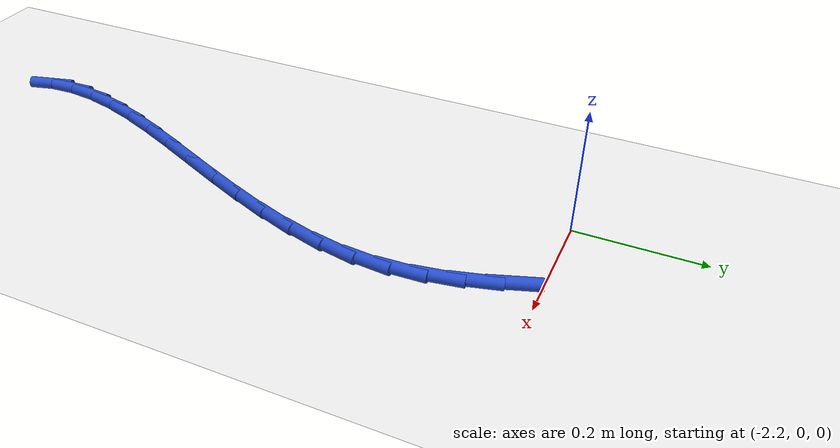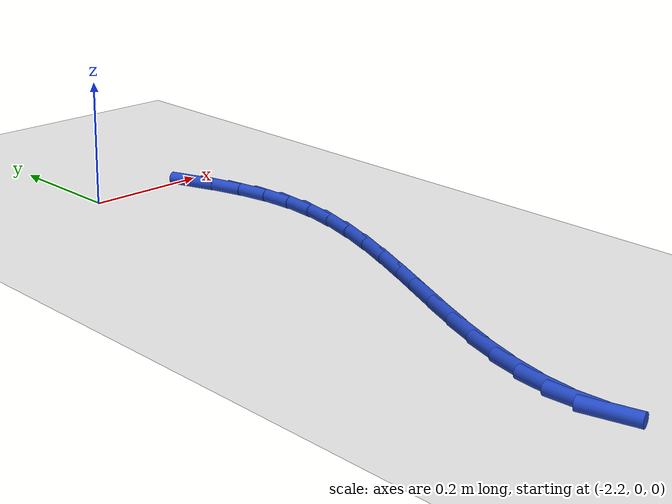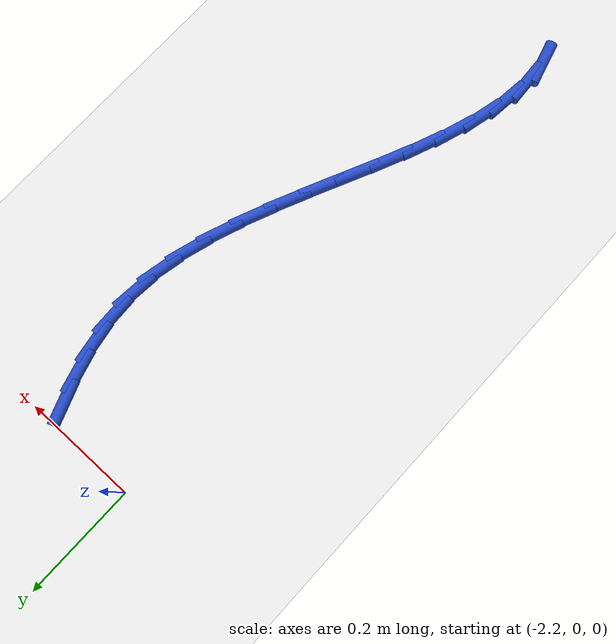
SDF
<sdf version="1.6">
 <world name="default">
  <model name="ground_plane">
   <static>1</static>
   <link name="link">
    <collision name="collision">
     <geometry><plane><normal>0 0 1</normal><size>100 100</size></plane></geometry>
     <surface><friction><ode><mu>100</mu><mu2>50</mu2></ode></friction></surface>
    </collision>
    <visual name="visual">
     <cast_shadows>0</cast_shadows>
     <geometry><plane><normal>0 0 1</normal><size>100 100</size></plane></geometry>
     <material>
      <script><uri>file://media/materials/scripts/gazebo.material</uri><name>Gazebo/WhiteGlow</name></script>
     </material>
    </visual>
   </link>
  </model>
  <model name="line">
   <link name="link_76">
    <pose>-2.031773640252935 -0.03587168650699777 0.01 0 1.57 -1.2196988792442198</pose>
    <collision name="collision">
     <geometry><cylinder><radius>0.01</radius><length>0.08</length></cylinder></geometry>
    </collision>
    <visual name="visual">
     <material>
      <script><name>Gazebo/Blue</name><uri>file://media/materials/scripts/gazebo.material</uri></script>
     </material>
     <geometry><cylinder><radius>0.01</radius><length>0.08</length></cylinder></geometry>
    </visual>
   </link>
   <link name="link_77">
    <pose>-2.0134906540737303 -0.08578801277975956 0.01 0 1.57 -1.301936873335858</pose>
    <collision name="collision">
     <geometry><cylinder><radius>0.01</radius><length>0.08</length></cylinder></geometry>
    </collision>
    <visual name="visual">
     <material>
      <script><name>Gazebo/Blue</name><uri>file://media/materials/scripts/gazebo.material</uri></script>
     </material>
     <geometry><cylinder><radius>0.01</radius><length>0.08</length></cylinder></geometry>
    </visual>
   </link>
   <link name="link_78">
    <pose>-1.9996487278731592 -0.1360253562721678 0.01 0 1.57 -1.4062714458879864</pose>
    <collision name="collision">
     <geometry><cylinder><radius>0.01</radius><length>0.08</length></cylinder></geometry>
    </collision>
    <visual name="visual">
     <material>
      <script><name>Gazebo/Blue</name><uri>file://media/materials/scripts/gazebo.material</uri></script>
     </material>
     <geometry><cylinder><radius>0.01</radius><length>0.08</length></cylinder></geometry>
    </visual>
   </link>
   <link name="link_79">
    <pose>-1.9911879266701011 -0.1869861764240299 0.01 0 1.57 -1.5297415730393862</pose>
    <collision name="collision">
     <geometry><cylinder><radius>0.01</radius><length>0.08</length></cylinder></geometry>
    </collision>
    <visual name="visual">
     <material>
      <script><name>Gazebo/Blue</name><uri>file://media/materials/scripts/gazebo.material</uri></script>
     </material>
     <geometry><cylinder><radius>0.01</radius><length>0.08</length></cylinder></geometry>
    </visual>
   </link>
   <link name="link_80">
    <pose>-1.9890483154834369 -0.23907293267515 0.01 0 1.57 1.478895554950037</pose>
    <collision name="collision">
     <geometry><cylinder><radius>0.01</radius><length>0.08</length></cylinder></geometry>
    </collision>
    <visual name="visual">
     <material>
      <script><name>Gazebo/Blue</name><uri>file://media/materials/scripts/gazebo.material</uri></script>
     </material>
     <geometry><cylinder><radius>0.01</radius><length>0.08</length></cylinder></geometry>
    </visual>
   </link>
   <link name="link_81">
    <pose>-1.9939834837968728 -0.2926227195791477 0.01 0 1.57 1.3656000970689612</pose>
    <collision name="collision">
     <geometry><cylinder><radius>0.01</radius><length>0.08</length></cylinder></geometry>
    </collision>
    <visual name="visual">
     <material>
      <script><name>Gazebo/Blue</name><uri>file://media/materials/scripts/gazebo.material</uri></script>
     </material>
     <geometry><cylinder><radius>0.01</radius><length>0.08</length></cylinder></geometry>
    </visual>
   </link>
   <link name="link_82">
    <pose>-2.005405332771232 -0.3475023324386206 0.01 0 1.57 1.2797999846254213</pose>
    <collision name="collision">
     <geometry><cylinder><radius>0.01</radius><length>0.08</length></cylinder></geometry>
    </collision>
    <visual name="visual">
     <material>
      <script><name>Gazebo/Blue</name><uri>file://media/materials/scripts/gazebo.material</uri></script>
     </material>
     <geometry><cylinder><radius>0.01</radius><length>0.08</length></cylinder></geometry>
    </visual>
   </link>
   <link name="link_83">
    <pose>-2.0221383997064444 -0.40337267910888003 0.01 0 1.57 1.2171398493664698</pose>
    <collision name="collision">
     <geometry><cylinder><radius>0.01</radius><length>0.08</length></cylinder></geometry>
    </collision>
    <visual name="visual">
     <material>
      <script><name>Gazebo/Blue</name><uri>file://media/materials/scripts/gazebo.material</uri></script>
     </material>
     <geometry><cylinder><radius>0.01</radius><length>0.08</length></cylinder></geometry>
    </visual>
   </link>
   <link name="link_84">
    <pose>-2.043004738154764 -0.4598937968222703 0.01 0 1.57 1.173882690733066</pose>
    <collision name="collision">
     <geometry><cylinder><radius>0.01</radius><length>0.08</length></cylinder></geometry>
    </collision>
    <visual name="visual">
     <material>
      <script><name>Gazebo/Blue</name><uri>file://media/materials/scripts/gazebo.material</uri></script>
     </material>
     <geometry><cylinder><radius>0.01</radius><length>0.08</length></cylinder></geometry>
    </visual>
   </link>
   <link name="link_85">
    <pose>-2.066826401668445 -0.5167257228111323 0.01 0 1.57 1.1473892147832763</pose>
    <collision name="collision">
     <geometry><cylinder><radius>0.01</radius><length>0.08</length></cylinder></geometry>
    </collision>
    <visual name="visual">
     <material>
      <script><name>Gazebo/Blue</name><uri>file://media/materials/scripts/gazebo.material</uri></script>
     </material>
     <geometry><cylinder><radius>0.01</radius><length>0.08</length></cylinder></geometry>
    </visual>
   </link>
   <link name="link_86">
    <pose>-2.092425443799744 -0.5735284943078107 0.01 0 1.57 1.1361678795984493</pose>
    <collision name="collision">
     <geometry><cylinder><radius>0.01</radius><length>0.08</length></cylinder></geometry>
    </collision>
    <visual name="visual">
     <material>
      <script><name>Gazebo/Blue</name><uri>file://media/materials/scripts/gazebo.material</uri></script>
     </material>
     <geometry><cylinder><radius>0.01</radius><length>0.08</length></cylinder></geometry>
    </visual>
   </link>
   <link name="link_87">
    <pose>-2.118623918100914 -0.6299621485446472 0.01 0 1.57 1.139855248068263</pose>
    <collision name="collision">
     <geometry><cylinder><radius>0.01</radius><length>0.08</length></cylinder></geometry>
    </collision>
    <visual name="visual">
     <material>
      <script><name>Gazebo/Blue</name><uri>file://media/materials/scripts/gazebo.material</uri></script>
     </material>
     <geometry><cylinder><radius>0.01</radius><length>0.08</length></cylinder></geometry>
    </visual>
   </link>
   <link name="link_88">
    <pose>-2.14424387812421 -0.6856867227539839 0.01 0 1.57 1.159261950155752</pose>
    <collision name="collision">
     <geometry><cylinder><radius>0.01</radius><length>0.08</length></cylinder></geometry>
    </collision>
    <visual name="visual">
     <material>
      <script><name>Gazebo/Blue</name><uri>file://media/materials/scripts/gazebo.material</uri></script>
     </material>
     <geometry><cylinder><radius>0.01</radius><length>0.08</length></cylinder></geometry>
    </visual>
   </link>
   <link name="link_89">
    <pose>-2.168107377421887 -0.7403622541681653 0.01 0 1.57 1.196542377190317</pose>
    <collision name="collision">
     <geometry><cylinder><radius>0.01</radius><length>0.08</length></cylinder></geometry>
    </collision>
    <visual name="visual">
     <material>
      <script><name>Gazebo/Blue</name><uri>file://media/materials/scripts/gazebo.material</uri></script>
     </material>
     <geometry><cylinder><radius>0.01</radius><length>0.08</length></cylinder></geometry>
    </visual>
   </link>
   <link name="link_90">
    <pose>-2.189036469546201 -0.7936487800195332 0.01 0 1.57 1.2555028860731114</pose>
    <collision name="collision">
     <geometry><cylinder><radius>0.01</radius><length>0.08</length></cylinder></geometry>
    </collision>
    <visual name="visual">
     <material>
      <script><name>Gazebo/Blue</name><uri>file://media/materials/scripts/gazebo.material</uri></script>
     </material>
     <geometry><cylinder><radius>0.01</radius><length>0.08</length></cylinder></geometry>
    </visual>
   </link>
   <link name="link_91">
    <pose>-2.205853208049404 -0.8452063375404293 0.01 0 1.57 1.3419650926298907</pose>
    <collision name="collision">
     <geometry><cylinder><radius>0.01</radius><length>0.08</length></cylinder></geometry>
    </collision>
    <visual name="visual">
     <material>
      <script><name>Gazebo/Blue</name><uri>file://media/materials/scripts/gazebo.material</uri></script>
     </material>
     <geometry><cylinder><radius>0.01</radius><length>0.08</length></cylinder></geometry>
    </visual>
   </link>
   <link name="link_92">
    <pose>-2.217379646483753 -0.8946949639631983 0.01 0 1.57 1.4637680383208027</pose>
    <collision name="collision">
     <geometry><cylinder><radius>0.01</radius><length>0.08</length></cylinder></geometry>
    </collision>
    <visual name="visual">
     <material>
      <script><name>Gazebo/Blue</name><uri>file://media/materials/scripts/gazebo.material</uri></script>
     </material>
     <geometry><cylinder><radius>0.01</radius><length>0.08</length></cylinder></geometry>
    </visual>
   </link>
   <link name="link_93">
    <pose>-2.2224378384015013 -0.9417746965201811 0.01 0 1.57 -1.5124833133900706</pose>
    <collision name="collision">
     <geometry><cylinder><radius>0.01</radius><length>0.08</length></cylinder></geometry>
    </collision>
    <visual name="visual">
     <material>
      <script><name>Gazebo/Blue</name><uri>file://media/materials/scripts/gazebo.material</uri></script>
     </material>
     <geometry><cylinder><radius>0.01</radius><length>0.08</length></cylinder></geometry>
    </visual>
   </link>
   <link name="link_94">
    <pose>-2.219849837354903 -0.986105572443722 0.01 0 1.57 -1.3013606189762674</pose>
    <collision name="collision">
     <geometry><cylinder><radius>0.01</radius><length>0.08</length></cylinder></geometry>
    </collision>
    <visual name="visual">
     <material>
      <script><name>Gazebo/Blue</name><uri>file://media/materials/scripts/gazebo.material</uri></script>
     </material>
     <geometry><cylinder><radius>0.01</radius><length>0.08</length></cylinder></geometry>
    </visual>
   </link>
  </model>
 </world>
</sdf>
